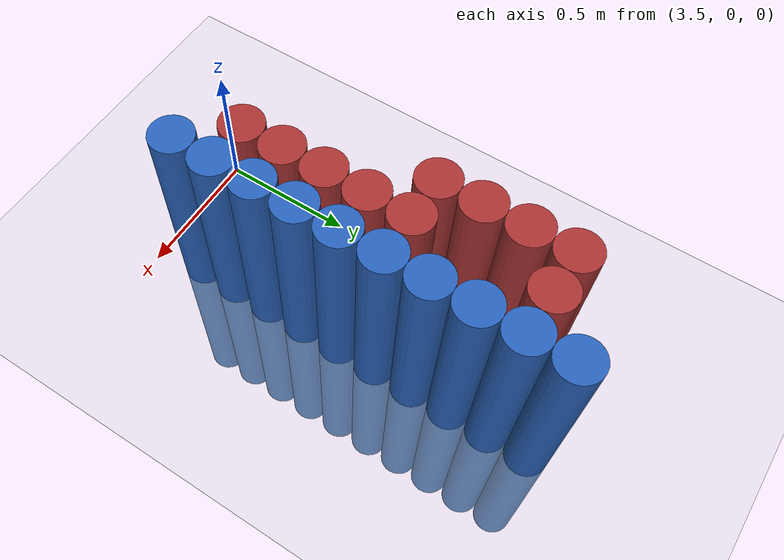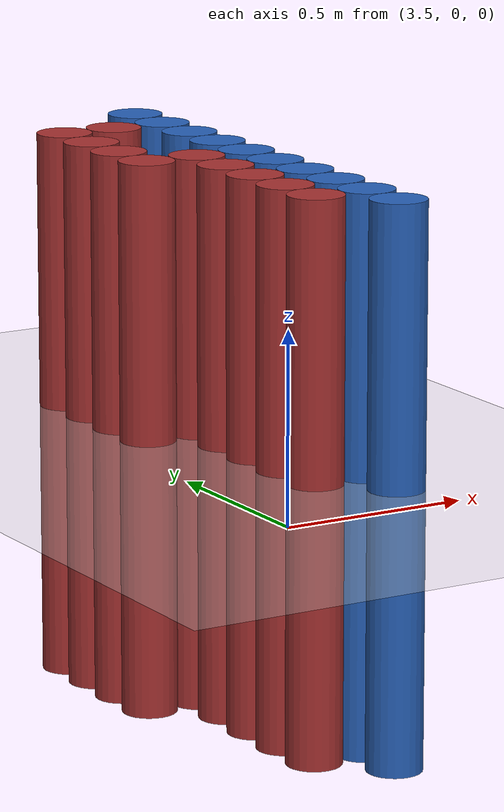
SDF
<sdf version="1.6">
 <world name="default">
  <model name="ground_plane">
   <static>1</static>
   <link name="link">
    <collision name="collision">
     <geometry><plane><normal>0 0 1</normal><size>100 100</size></plane></geometry>
     <surface><friction><ode><mu>100</mu><mu2>50</mu2></ode></friction></surface>
    </collision>
    <visual name="visual">
     <cast_shadows>0</cast_shadows>
     <geometry><plane><normal>0 0 1</normal><size>100 100</size></plane></geometry>
     <material>
      <script><uri>file://media/materials/scripts/gazebo.material</uri><name>Gazebo/Grey</name></script>
     </material>
    </visual>
   </link>
  </model>
  <model name="unit_cylinder_118">
   <static>1</static>
   <pose>3.925000 0.325000 0.000000 0.000000 0.000000 0.000000</pose>
   <link name="link">
    <inertial>
     <mass>1</mass>
     <inertia><ixx>0.145833</ixx><ixy>0</ixy><ixz>0</ixz><iyy>0.145833</iyy><iyz>0</iyz><izz>0.125</izz></inertia>
    </inertial>
    <collision name="collision">
     <geometry><cylinder><radius>0.075000</radius><length>1.5</length></cylinder></geometry>
    </collision>
    <visual name="visual">
     <geometry><cylinder><radius>0.075000</radius><length>1.5</length></cylinder></geometry>
     <material>
      <ambient>0.152000 0.379000 0.720000 1</ambient>
      <diffuse>0.152000 0.379000 0.720000 1</diffuse>
     </material>
     <material>
      <script><name>Gazebo/Grey</name><uri>file://media/materials/scripts/gazebo.material</uri></script>
     </material>
    </visual>
   </link>
  </model>
  <model name="unit_cylinder_120">
   <static>1</static>
   <pose>3.925000 0.475000 0.000000 0.000000 0.000000 0.000000</pose>
   <link name="link">
    <inertial>
     <mass>1</mass>
     <inertia><ixx>0.145833</ixx><ixy>0</ixy><ixz>0</ixz><iyy>0.145833</iyy><iyz>0</iyz><izz>0.125</izz></inertia>
    </inertial>
    <collision name="collision">
     <geometry><cylinder><radius>0.075000</radius><length>1.5</length></cylinder></geometry>
    </collision>
    <visual name="visual">
     <geometry><cylinder><radius>0.075000</radius><length>1.5</length></cylinder></geometry>
     <material>
      <ambient>0.152000 0.379000 0.720000 1</ambient>
      <diffuse>0.152000 0.379000 0.720000 1</diffuse>
     </material>
     <material>
      <script><name>Gazebo/Grey</name><uri>file://media/materials/scripts/gazebo.material</uri></script>
     </material>
    </visual>
   </link>
  </model>
  <model name="unit_cylinder_122">
   <static>1</static>
   <pose>3.925000 0.625000 0.000000 0.000000 0.000000 0.000000</pose>
   <link name="link">
    <inertial>
     <mass>1</mass>
     <inertia><ixx>0.145833</ixx><ixy>0</ixy><ixz>0</ixz><iyy>0.145833</iyy><iyz>0</iyz><izz>0.125</izz></inertia>
    </inertial>
    <collision name="collision">
     <geometry><cylinder><radius>0.075000</radius><length>1.5</length></cylinder></geometry>
    </collision>
    <visual name="visual">
     <geometry><cylinder><radius>0.075000</radius><length>1.5</length></cylinder></geometry>
     <material>
      <ambient>0.152000 0.379000 0.720000 1</ambient>
      <diffuse>0.152000 0.379000 0.720000 1</diffuse>
     </material>
     <material>
      <script><name>Gazebo/Grey</name><uri>file://media/materials/scripts/gazebo.material</uri></script>
     </material>
    </visual>
   </link>
  </model>
  <model name="unit_cylinder_124">
   <static>1</static>
   <pose>3.925000 0.775000 0.000000 0.000000 0.000000 0.000000</pose>
   <link name="link">
    <inertial>
     <mass>1</mass>
     <inertia><ixx>0.145833</ixx><ixy>0</ixy><ixz>0</ixz><iyy>0.145833</iyy><iyz>0</iyz><izz>0.125</izz></inertia>
    </inertial>
    <collision name="collision">
     <geometry><cylinder><radius>0.075000</radius><length>1.5</length></cylinder></geometry>
    </collision>
    <visual name="visual">
     <geometry><cylinder><radius>0.075000</radius><length>1.5</length></cylinder></geometry>
     <material>
      <ambient>0.152000 0.379000 0.720000 1</ambient>
      <diffuse>0.152000 0.379000 0.720000 1</diffuse>
     </material>
     <material>
      <script><name>Gazebo/Grey</name><uri>file://media/materials/scripts/gazebo.material</uri></script>
     </material>
    </visual>
   </link>
  </model>
  <model name="unit_cylinder_126">
   <static>1</static>
   <pose>3.925000 0.925000 0.000000 0.000000 0.000000 0.000000</pose>
   <link name="link">
    <inertial>
     <mass>1</mass>
     <inertia><ixx>0.145833</ixx><ixy>0</ixy><ixz>0</ixz><iyy>0.145833</iyy><iyz>0</iyz><izz>0.125</izz></inertia>
    </inertial>
    <collision name="collision">
     <geometry><cylinder><radius>0.075000</radius><length>1.5</length></cylinder></geometry>
    </collision>
    <visual name="visual">
     <geometry><cylinder><radius>0.075000</radius><length>1.5</length></cylinder></geometry>
     <material>
      <ambient>0.152000 0.379000 0.720000 1</ambient>
      <diffuse>0.152000 0.379000 0.720000 1</diffuse>
     </material>
     <material>
      <script><name>Gazebo/Grey</name><uri>file://media/materials/scripts/gazebo.material</uri></script>
     </material>
    </visual>
   </link>
  </model>
  <model name="unit_cylinder_128">
   <static>1</static>
   <pose>3.925000 1.075000 0.000000 0.000000 0.000000 0.000000</pose>
   <link name="link">
    <inertial>
     <mass>1</mass>
     <inertia><ixx>0.145833</ixx><ixy>0</ixy><ixz>0</ixz><iyy>0.145833</iyy><iyz>0</iyz><izz>0.125</izz></inertia>
    </inertial>
    <collision name="collision">
     <geometry><cylinder><radius>0.075000</radius><length>1.5</length></cylinder></geometry>
    </collision>
    <visual name="visual">
     <geometry><cylinder><radius>0.075000</radius><length>1.5</length></cylinder></geometry>
     <material>
      <ambient>0.152000 0.379000 0.720000 1</ambient>
      <diffuse>0.152000 0.379000 0.720000 1</diffuse>
     </material>
     <material>
      <script><name>Gazebo/Grey</name><uri>file://media/materials/scripts/gazebo.material</uri></script>
     </material>
    </visual>
   </link>
  </model>
  <model name="unit_cylinder_130">
   <static>1</static>
   <pose>3.925000 1.225000 0.000000 0.000000 0.000000 0.000000</pose>
   <link name="link">
    <inertial>
     <mass>1</mass>
     <inertia><ixx>0.145833</ixx><ixy>0</ixy><ixz>0</ixz><iyy>0.145833</iyy><iyz>0</iyz><izz>0.125</izz></inertia>
    </inertial>
    <collision name="collision">
     <geometry><cylinder><radius>0.075000</radius><length>1.5</length></cylinder></geometry>
    </collision>
    <visual name="visual">
     <geometry><cylinder><radius>0.075000</radius><length>1.5</length></cylinder></geometry>
     <material>
      <ambient>0.152000 0.379000 0.720000 1</ambient>
      <diffuse>0.152000 0.379000 0.720000 1</diffuse>
     </material>
     <material>
      <script><name>Gazebo/Grey</name><uri>file://media/materials/scripts/gazebo.material</uri></script>
     </material>
    </visual>
   </link>
  </model>
  <model name="unit_cylinder_132">
   <static>1</static>
   <pose>3.925000 1.375000 0.000000 0.000000 0.000000 0.000000</pose>
   <link name="link">
    <inertial>
     <mass>1</mass>
     <inertia><ixx>0.145833</ixx><ixy>0</ixy><ixz>0</ixz><iyy>0.145833</iyy><iyz>0</iyz><izz>0.125</izz></inertia>
    </inertial>
    <collision name="collision">
     <geometry><cylinder><radius>0.075000</radius><length>1.5</length></cylinder></geometry>
    </collision>
    <visual name="visual">
     <geometry><cylinder><radius>0.075000</radius><length>1.5</length></cylinder></geometry>
     <material>
      <ambient>0.152000 0.379000 0.720000 1</ambient>
      <diffuse>0.152000 0.379000 0.720000 1</diffuse>
     </material>
     <material>
      <script><name>Gazebo/Grey</name><uri>file://media/materials/scripts/gazebo.material</uri></script>
     </material>
    </visual>
   </link>
  </model>
  <model name="unit_cylinder_134">
   <static>1</static>
   <pose>3.925000 1.525000 0.000000 0.000000 0.000000 0.000000</pose>
   <link name="link">
    <inertial>
     <mass>1</mass>
     <inertia><ixx>0.145833</ixx><ixy>0</ixy><ixz>0</ixz><iyy>0.145833</iyy><iyz>0</iyz><izz>0.125</izz></inertia>
    </inertial>
    <collision name="collision">
     <geometry><cylinder><radius>0.075000</radius><length>1.5</length></cylinder></geometry>
    </collision>
    <visual name="visual">
     <geometry><cylinder><radius>0.075000</radius><length>1.5</length></cylinder></geometry>
     <material>
      <ambient>0.152000 0.379000 0.720000 1</ambient>
      <diffuse>0.152000 0.379000 0.720000 1</diffuse>
     </material>
     <material>
      <script><name>Gazebo/Grey</name><uri>file://media/materials/scripts/gazebo.material</uri></script>
     </material>
    </visual>
   </link>
  </model>
  <model name="unit_cylinder_564">
   <static>1</static>
   <pose>3.625000 0.925000 0.000000 0.000000 0.000000 0.000000</pose>
   <link name="link">
    <inertial>
     <mass>1</mass>
     <inertia><ixx>0.145833</ixx><ixy>0</ixy><ixz>0</ixz><iyy>0.145833</iyy><iyz>0</iyz><izz>0.125</izz></inertia>
    </inertial>
    <collision name="collision">
     <geometry><cylinder><radius>0.075000</radius><length>1.5</length></cylinder></geometry>
    </collision>
    <visual name="visual">
     <geometry><cylinder><radius>0.075000</radius><length>1.5</length></cylinder></geometry>
     <material>
      <ambient>0.648000 0.192000 0.192000 1</ambient>
      <diffuse>0.648000 0.192000 0.192000 1</diffuse>
     </material>
     <material>
      <script><name>Gazebo/Grey</name><uri>file://media/materials/scripts/gazebo.material</uri></script>
     </material>
    </visual>
   </link>
  </model>
  <model name="unit_cylinder_565">
   <static>1</static>
   <pose>3.625000 1.075000 0.000000 0.000000 0.000000 0.000000</pose>
   <link name="link">
    <inertial>
     <mass>1</mass>
     <inertia><ixx>0.145833</ixx><ixy>0</ixy><ixz>0</ixz><iyy>0.145833</iyy><iyz>0</iyz><izz>0.125</izz></inertia>
    </inertial>
    <collision name="collision">
     <geometry><cylinder><radius>0.075000</radius><length>1.5</length></cylinder></geometry>
    </collision>
    <visual name="visual">
     <geometry><cylinder><radius>0.075000</radius><length>1.5</length></cylinder></geometry>
     <material>
      <ambient>0.648000 0.192000 0.192000 1</ambient>
      <diffuse>0.648000 0.192000 0.192000 1</diffuse>
     </material>
     <material>
      <script><name>Gazebo/Grey</name><uri>file://media/materials/scripts/gazebo.material</uri></script>
     </material>
    </visual>
   </link>
  </model>
  <model name="unit_cylinder_566">
   <static>1</static>
   <pose>3.625000 1.225000 0.000000 0.000000 0.000000 0.000000</pose>
   <link name="link">
    <inertial>
     <mass>1</mass>
     <inertia><ixx>0.145833</ixx><ixy>0</ixy><ixz>0</ixz><iyy>0.145833</iyy><iyz>0</iyz><izz>0.125</izz></inertia>
    </inertial>
    <collision name="collision">
     <geometry><cylinder><radius>0.075000</radius><length>1.5</length></cylinder></geometry>
    </collision>
    <visual name="visual">
     <geometry><cylinder><radius>0.075000</radius><length>1.5</length></cylinder></geometry>
     <material>
      <ambient>0.648000 0.192000 0.192000 1</ambient>
      <diffuse>0.648000 0.192000 0.192000 1</diffuse>
     </material>
     <material>
      <script><name>Gazebo/Grey</name><uri>file://media/materials/scripts/gazebo.material</uri></script>
     </material>
    </visual>
   </link>
  </model>
  <model name="unit_cylinder_567">
   <static>1</static>
   <pose>3.625000 1.375000 0.000000 0.000000 0.000000 0.000000</pose>
   <link name="link">
    <inertial>
     <mass>1</mass>
     <inertia><ixx>0.145833</ixx><ixy>0</ixy><ixz>0</ixz><iyy>0.145833</iyy><iyz>0</iyz><izz>0.125</izz></inertia>
    </inertial>
    <collision name="collision">
     <geometry><cylinder><radius>0.075000</radius><length>1.5</length></cylinder></geometry>
    </collision>
    <visual name="visual">
     <geometry><cylinder><radius>0.075000</radius><length>1.5</length></cylinder></geometry>
     <material>
      <ambient>0.648000 0.192000 0.192000 1</ambient>
      <diffuse>0.648000 0.192000 0.192000 1</diffuse>
     </material>
     <material>
      <script><name>Gazebo/Grey</name><uri>file://media/materials/scripts/gazebo.material</uri></script>
     </material>
    </visual>
   </link>
  </model>
  <model name="unit_cylinder_580">
   <static>1</static>
   <pose>3.775000 0.325000 0.000000 0.000000 0.000000 0.000000</pose>
   <link name="link">
    <inertial>
     <mass>1</mass>
     <inertia><ixx>0.145833</ixx><ixy>0</ixy><ixz>0</ixz><iyy>0.145833</iyy><iyz>0</iyz><izz>0.125</izz></inertia>
    </inertial>
    <collision name="collision">
     <geometry><cylinder><radius>0.075000</radius><length>1.5</length></cylinder></geometry>
    </collision>
    <visual name="visual">
     <geometry><cylinder><radius>0.075000</radius><length>1.5</length></cylinder></geometry>
     <material>
      <ambient>0.648000 0.192000 0.192000 1</ambient>
      <diffuse>0.648000 0.192000 0.192000 1</diffuse>
     </material>
     <material>
      <script><name>Gazebo/Grey</name><uri>file://media/materials/scripts/gazebo.material</uri></script>
     </material>
    </visual>
   </link>
  </model>
  <model name="unit_cylinder_581">
   <static>1</static>
   <pose>3.775000 0.475000 0.000000 0.000000 0.000000 0.000000</pose>
   <link name="link">
    <inertial>
     <mass>1</mass>
     <inertia><ixx>0.145833</ixx><ixy>0</ixy><ixz>0</ixz><iyy>0.145833</iyy><iyz>0</iyz><izz>0.125</izz></inertia>
    </inertial>
    <collision name="collision">
     <geometry><cylinder><radius>0.075000</radius><length>1.5</length></cylinder></geometry>
    </collision>
    <visual name="visual">
     <geometry><cylinder><radius>0.075000</radius><length>1.5</length></cylinder></geometry>
     <material>
      <ambient>0.648000 0.192000 0.192000 1</ambient>
      <diffuse>0.648000 0.192000 0.192000 1</diffuse>
     </material>
     <material>
      <script><name>Gazebo/Grey</name><uri>file://media/materials/scripts/gazebo.material</uri></script>
     </material>
    </visual>
   </link>
  </model>
  <model name="unit_cylinder_582">
   <static>1</static>
   <pose>3.775000 0.625000 0.000000 0.000000 0.000000 0.000000</pose>
   <link name="link">
    <inertial>
     <mass>1</mass>
     <inertia><ixx>0.145833</ixx><ixy>0</ixy><ixz>0</ixz><iyy>0.145833</iyy><iyz>0</iyz><izz>0.125</izz></inertia>
    </inertial>
    <collision name="collision">
     <geometry><cylinder><radius>0.075000</radius><length>1.5</length></cylinder></geometry>
    </collision>
    <visual name="visual">
     <geometry><cylinder><radius>0.075000</radius><length>1.5</length></cylinder></geometry>
     <material>
      <ambient>0.648000 0.192000 0.192000 1</ambient>
      <diffuse>0.648000 0.192000 0.192000 1</diffuse>
     </material>
     <material>
      <script><name>Gazebo/Grey</name><uri>file://media/materials/scripts/gazebo.material</uri></script>
     </material>
    </visual>
   </link>
  </model>
  <model name="unit_cylinder_583">
   <static>1</static>
   <pose>3.775000 0.775000 0.000000 0.000000 0.000000 0.000000</pose>
   <link name="link">
    <inertial>
     <mass>1</mass>
     <inertia><ixx>0.145833</ixx><ixy>0</ixy><ixz>0</ixz><iyy>0.145833</iyy><iyz>0</iyz><izz>0.125</izz></inertia>
    </inertial>
    <collision name="collision">
     <geometry><cylinder><radius>0.075000</radius><length>1.5</length></cylinder></geometry>
    </collision>
    <visual name="visual">
     <geometry><cylinder><radius>0.075000</radius><length>1.5</length></cylinder></geometry>
     <material>
      <ambient>0.648000 0.192000 0.192000 1</ambient>
      <diffuse>0.648000 0.192000 0.192000 1</diffuse>
     </material>
     <material>
      <script><name>Gazebo/Grey</name><uri>file://media/materials/scripts/gazebo.material</uri></script>
     </material>
    </visual>
   </link>
  </model>
  <model name="unit_cylinder_584">
   <static>1</static>
   <pose>3.775000 0.925000 0.000000 0.000000 0.000000 0.000000</pose>
   <link name="link">
    <inertial>
     <mass>1</mass>
     <inertia><ixx>0.145833</ixx><ixy>0</ixy><ixz>0</ixz><iyy>0.145833</iyy><iyz>0</iyz><izz>0.125</izz></inertia>
    </inertial>
    <collision name="collision">
     <geometry><cylinder><radius>0.075000</radius><length>1.5</length></cylinder></geometry>
    </collision>
    <visual name="visual">
     <geometry><cylinder><radius>0.075000</radius><length>1.5</length></cylinder></geometry>
     <material>
      <ambient>0.648000 0.192000 0.192000 1</ambient>
      <diffuse>0.648000 0.192000 0.192000 1</diffuse>
     </material>
     <material>
      <script><name>Gazebo/Grey</name><uri>file://media/materials/scripts/gazebo.material</uri></script>
     </material>
    </visual>
   </link>
  </model>
  <model name="unit_cylinder_585">
   <static>1</static>
   <pose>3.775000 1.375000 0.000000 0.000000 0.000000 0.000000</pose>
   <link name="link">
    <inertial>
     <mass>1</mass>
     <inertia><ixx>0.145833</ixx><ixy>0</ixy><ixz>0</ixz><iyy>0.145833</iyy><iyz>0</iyz><izz>0.125</izz></inertia>
    </inertial>
    <collision name="collision">
     <geometry><cylinder><radius>0.075000</radius><length>1.5</length></cylinder></geometry>
    </collision>
    <visual name="visual">
     <geometry><cylinder><radius>0.075000</radius><length>1.5</length></cylinder></geometry>
     <material>
      <ambient>0.648000 0.192000 0.192000 1</ambient>
      <diffuse>0.648000 0.192000 0.192000 1</diffuse>
     </material>
     <material>
      <script><name>Gazebo/Grey</name><uri>file://media/materials/scripts/gazebo.material</uri></script>
     </material>
    </visual>
   </link>
  </model>
  <model name="unit_cylinder_614">
   <static>1</static>
   <pose>3.925000 0.175000 0.000000 0.000000 0.000000 0.000000</pose>
   <link name="link">
    <inertial>
     <mass>1</mass>
     <inertia><ixx>0.145833</ixx><ixy>0</ixy><ixz>0</ixz><iyy>0.145833</iyy><iyz>0</iyz><izz>0.125</izz></inertia>
    </inertial>
    <collision name="collision">
     <geometry><cylinder><radius>0.075000</radius><length>1.5</length></cylinder></geometry>
    </collision>
    <visual name="visual">
     <geometry><cylinder><radius>0.075000</radius><length>1.5</length></cylinder></geometry>
     <material>
      <ambient>0.152000 0.379000 0.720000 1</ambient>
      <diffuse>0.152000 0.379000 0.720000 1</diffuse>
     </material>
     <material>
      <script><name>Gazebo/Grey</name><uri>file://media/materials/scripts/gazebo.material</uri></script>
     </material>
    </visual>
   </link>
  </model>
  <model name="unit_cylinder_615">
   <static>1</static>
   <pose>3.925000 0.325000 0.000000 0.000000 0.000000 0.000000</pose>
   <link name="link">
    <inertial>
     <mass>1</mass>
     <inertia><ixx>0.145833</ixx><ixy>0</ixy><ixz>0</ixz><iyy>0.145833</iyy><iyz>0</iyz><izz>0.125</izz></inertia>
    </inertial>
    <collision name="collision">
     <geometry><cylinder><radius>0.075000</radius><length>1.5</length></cylinder></geometry>
    </collision>
    <visual name="visual">
     <geometry><cylinder><radius>0.075000</radius><length>1.5</length></cylinder></geometry>
     <material>
      <ambient>0.152000 0.379000 0.720000 1</ambient>
      <diffuse>0.152000 0.379000 0.720000 1</diffuse>
     </material>
     <material>
      <script><name>Gazebo/Grey</name><uri>file://media/materials/scripts/gazebo.material</uri></script>
     </material>
    </visual>
   </link>
  </model>
  <model name="unit_cylinder_616">
   <static>1</static>
   <pose>3.925000 0.475000 0.000000 0.000000 0.000000 0.000000</pose>
   <link name="link">
    <inertial>
     <mass>1</mass>
     <inertia><ixx>0.145833</ixx><ixy>0</ixy><ixz>0</ixz><iyy>0.145833</iyy><iyz>0</iyz><izz>0.125</izz></inertia>
    </inertial>
    <collision name="collision">
     <geometry><cylinder><radius>0.075000</radius><length>1.5</length></cylinder></geometry>
    </collision>
    <visual name="visual">
     <geometry><cylinder><radius>0.075000</radius><length>1.5</length></cylinder></geometry>
     <material>
      <ambient>0.152000 0.379000 0.720000 1</ambient>
      <diffuse>0.152000 0.379000 0.720000 1</diffuse>
     </material>
     <material>
      <script><name>Gazebo/Grey</name><uri>file://media/materials/scripts/gazebo.material</uri></script>
     </material>
    </visual>
   </link>
  </model>
  <model name="unit_cylinder_617">
   <static>1</static>
   <pose>3.925000 0.625000 0.000000 0.000000 0.000000 0.000000</pose>
   <link name="link">
    <inertial>
     <mass>1</mass>
     <inertia><ixx>0.145833</ixx><ixy>0</ixy><ixz>0</ixz><iyy>0.145833</iyy><iyz>0</iyz><izz>0.125</izz></inertia>
    </inertial>
    <collision name="collision">
     <geometry><cylinder><radius>0.075000</radius><length>1.5</length></cylinder></geometry>
    </collision>
    <visual name="visual">
     <geometry><cylinder><radius>0.075000</radius><length>1.5</length></cylinder></geometry>
     <material>
      <ambient>0.152000 0.379000 0.720000 1</ambient>
      <diffuse>0.152000 0.379000 0.720000 1</diffuse>
     </material>
     <material>
      <script><name>Gazebo/Grey</name><uri>file://media/materials/scripts/gazebo.material</uri></script>
     </material>
    </visual>
   </link>
  </model>
  <model name="unit_cylinder_618">
   <static>1</static>
   <pose>3.925000 0.775000 0.000000 0.000000 0.000000 0.000000</pose>
   <link name="link">
    <inertial>
     <mass>1</mass>
     <inertia><ixx>0.145833</ixx><ixy>0</ixy><ixz>0</ixz><iyy>0.145833</iyy><iyz>0</iyz><izz>0.125</izz></inertia>
    </inertial>
    <collision name="collision">
     <geometry><cylinder><radius>0.075000</radius><length>1.5</length></cylinder></geometry>
    </collision>
    <visual name="visual">
     <geometry><cylinder><radius>0.075000</radius><length>1.5</length></cylinder></geometry>
     <material>
      <ambient>0.152000 0.379000 0.720000 1</ambient>
      <diffuse>0.152000 0.379000 0.720000 1</diffuse>
     </material>
     <material>
      <script><name>Gazebo/Grey</name><uri>file://media/materials/scripts/gazebo.material</uri></script>
     </material>
    </visual>
   </link>
  </model>
  <model name="unit_cylinder_619">
   <static>1</static>
   <pose>3.925000 0.925000 0.000000 0.000000 0.000000 0.000000</pose>
   <link name="link">
    <inertial>
     <mass>1</mass>
     <inertia><ixx>0.145833</ixx><ixy>0</ixy><ixz>0</ixz><iyy>0.145833</iyy><iyz>0</iyz><izz>0.125</izz></inertia>
    </inertial>
    <collision name="collision">
     <geometry><cylinder><radius>0.075000</radius><length>1.5</length></cylinder></geometry>
    </collision>
    <visual name="visual">
     <geometry><cylinder><radius>0.075000</radius><length>1.5</length></cylinder></geometry>
     <material>
      <ambient>0.152000 0.379000 0.720000 1</ambient>
      <diffuse>0.152000 0.379000 0.720000 1</diffuse>
     </material>
     <material>
      <script><name>Gazebo/Grey</name><uri>file://media/materials/scripts/gazebo.material</uri></script>
     </material>
    </visual>
   </link>
  </model>
  <model name="unit_cylinder_620">
   <static>1</static>
   <pose>3.925000 1.075000 0.000000 0.000000 0.000000 0.000000</pose>
   <link name="link">
    <inertial>
     <mass>1</mass>
     <inertia><ixx>0.145833</ixx><ixy>0</ixy><ixz>0</ixz><iyy>0.145833</iyy><iyz>0</iyz><izz>0.125</izz></inertia>
    </inertial>
    <collision name="collision">
     <geometry><cylinder><radius>0.075000</radius><length>1.5</length></cylinder></geometry>
    </collision>
    <visual name="visual">
     <geometry><cylinder><radius>0.075000</radius><length>1.5</length></cylinder></geometry>
     <material>
      <ambient>0.152000 0.379000 0.720000 1</ambient>
      <diffuse>0.152000 0.379000 0.720000 1</diffuse>
     </material>
     <material>
      <script><name>Gazebo/Grey</name><uri>file://media/materials/scripts/gazebo.material</uri></script>
     </material>
    </visual>
   </link>
  </model>
  <model name="unit_cylinder_621">
   <static>1</static>
   <pose>3.925000 1.225000 0.000000 0.000000 0.000000 0.000000</pose>
   <link name="link">
    <inertial>
     <mass>1</mass>
     <inertia><ixx>0.145833</ixx><ixy>0</ixy><ixz>0</ixz><iyy>0.145833</iyy><iyz>0</iyz><izz>0.125</izz></inertia>
    </inertial>
    <collision name="collision">
     <geometry><cylinder><radius>0.075000</radius><length>1.5</length></cylinder></geometry>
    </collision>
    <visual name="visual">
     <geometry><cylinder><radius>0.075000</radius><length>1.5</length></cylinder></geometry>
     <material>
      <ambient>0.152000 0.379000 0.720000 1</ambient>
      <diffuse>0.152000 0.379000 0.720000 1</diffuse>
     </material>
     <material>
      <script><name>Gazebo/Grey</name><uri>file://media/materials/scripts/gazebo.material</uri></script>
     </material>
    </visual>
   </link>
  </model>
  <model name="unit_cylinder_622">
   <static>1</static>
   <pose>3.925000 1.375000 0.000000 0.000000 0.000000 0.000000</pose>
   <link name="link">
    <inertial>
     <mass>1</mass>
     <inertia><ixx>0.145833</ixx><ixy>0</ixy><ixz>0</ixz><iyy>0.145833</iyy><iyz>0</iyz><izz>0.125</izz></inertia>
    </inertial>
    <collision name="collision">
     <geometry><cylinder><radius>0.075000</radius><length>1.5</length></cylinder></geometry>
    </collision>
    <visual name="visual">
     <geometry><cylinder><radius>0.075000</radius><length>1.5</length></cylinder></geometry>
     <material>
      <ambient>0.152000 0.379000 0.720000 1</ambient>
      <diffuse>0.152000 0.379000 0.720000 1</diffuse>
     </material>
     <material>
      <script><name>Gazebo/Grey</name><uri>file://media/materials/scripts/gazebo.material</uri></script>
     </material>
    </visual>
   </link>
  </model>
 </world>
</sdf>
